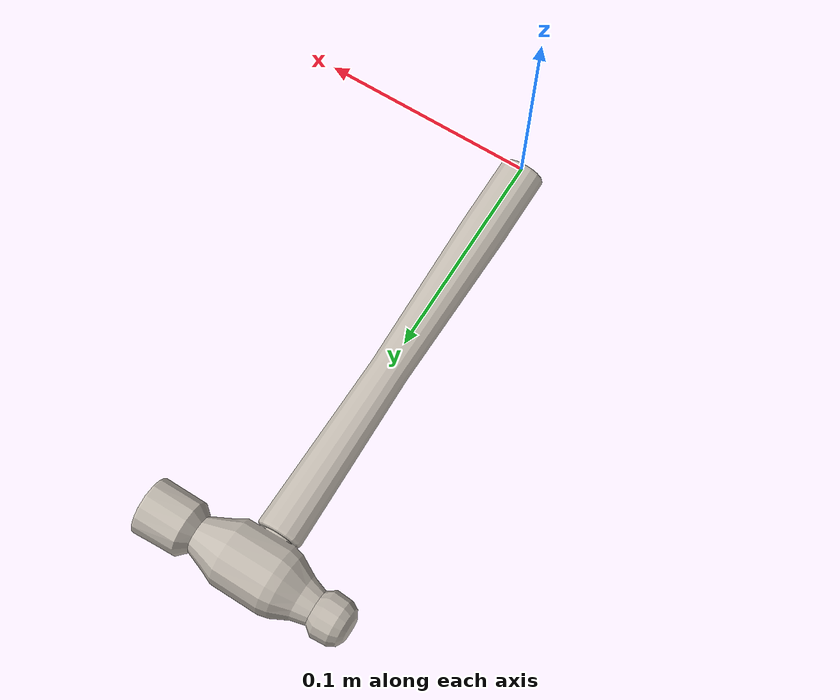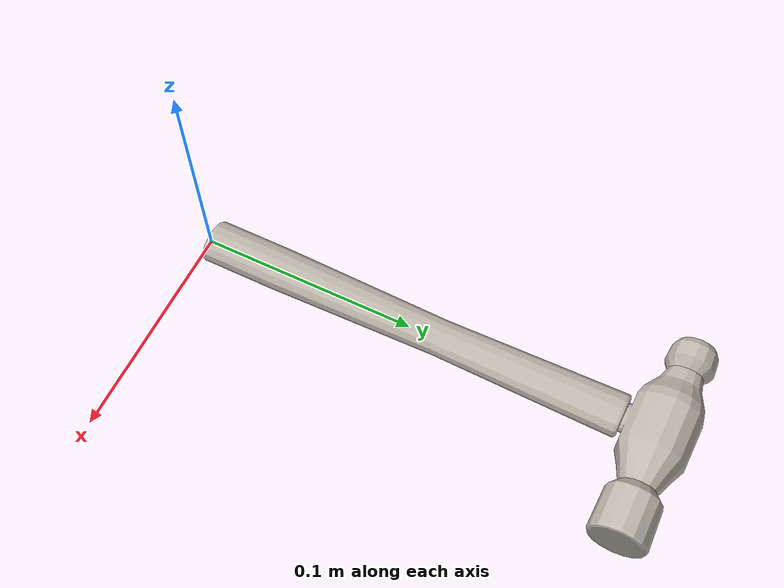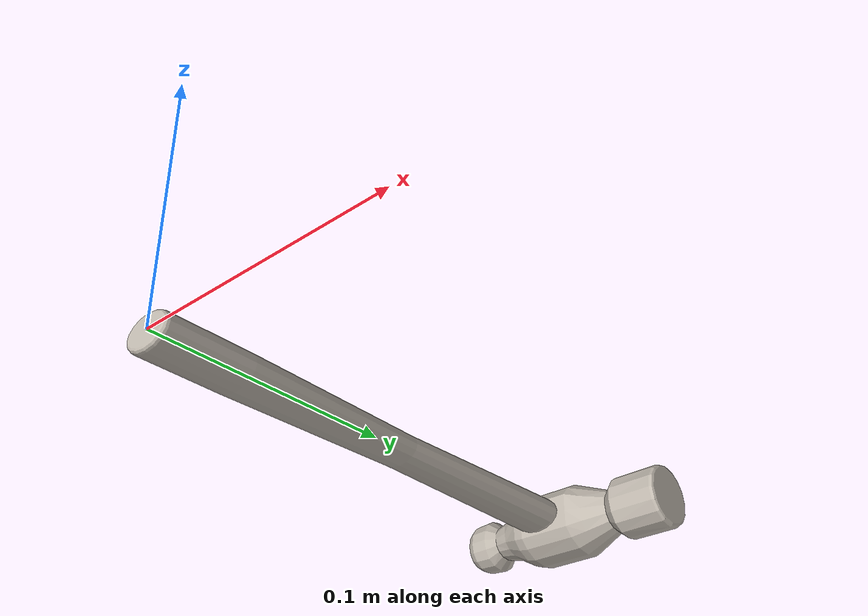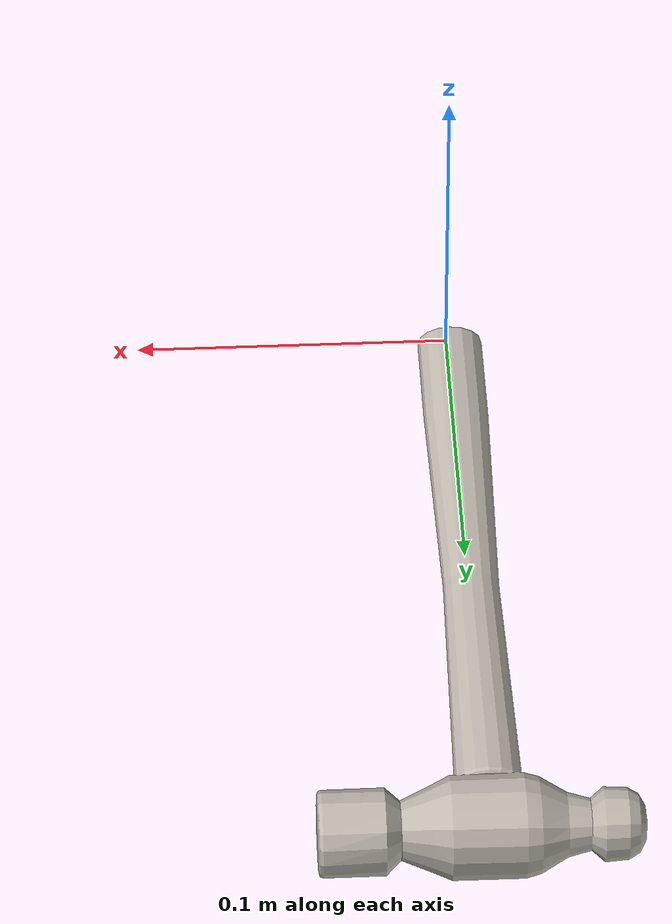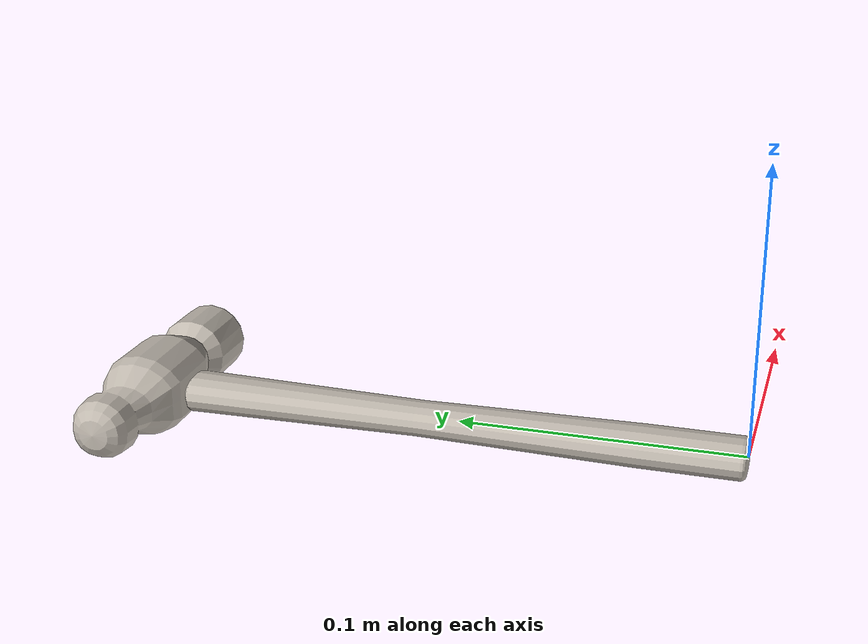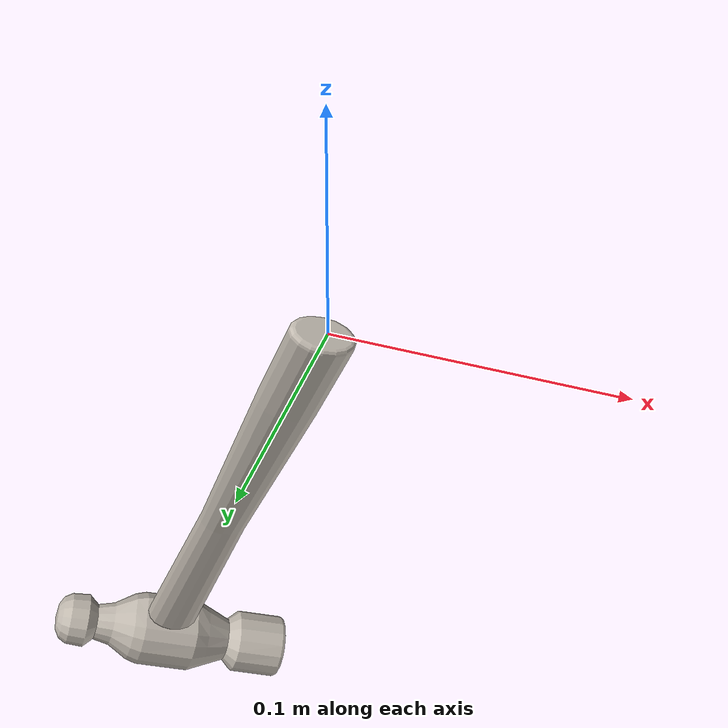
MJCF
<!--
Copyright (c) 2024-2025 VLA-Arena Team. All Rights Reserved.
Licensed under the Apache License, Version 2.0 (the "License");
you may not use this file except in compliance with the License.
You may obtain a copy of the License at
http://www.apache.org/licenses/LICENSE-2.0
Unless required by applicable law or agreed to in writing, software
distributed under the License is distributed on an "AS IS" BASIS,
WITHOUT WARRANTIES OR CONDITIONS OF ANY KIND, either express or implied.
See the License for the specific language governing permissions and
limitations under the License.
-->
<mujoco model="hammer">
  <compiler angle="radian"/>

  <asset>
    <texture type="2d" name="Image_0" file="Image_0.png"/>
    <material name="Hammers" texture="Image_0" specular="0.5" shininess="0.225"/>
    <mesh file="hammer.obj" name="hammer" scale="0.7 0.7 0.7"/>
    <mesh file="hammer_collision_0.obj" name="hammer_collision_0" scale="0.7 0.7 0.7"/>
    <mesh file="hammer_collision_1.obj" name="hammer_collision_1" scale="0.7 0.7 0.7"/>
    <mesh file="hammer_collision_2.obj" name="hammer_collision_2" scale="0.7 0.7 0.7"/>
  </asset>

  <worldbody>
    <body>
      <body name="object">
        <!-- Inertial -->

        <!-- Visual geom: group changed to 0 -->
        <geom
          mesh="hammer"
          material="Hammers"
          type="mesh"
          group="1"
          contype="0"
          conaffinity="0"
          mass="0.01" />

        <!-- Collision geoms: group changed to 1 -->
        <geom
          mesh="hammer_collision_0"
          type="mesh"
          group="0"
          solref="0.001 1"
          solimp="0.998 0.998 0.001"
          rgba="0.5272990505603383 0.7421561142137685 0.9126013996703229 0"/>
        <geom
          mesh="hammer_collision_1"
          type="mesh"
          group="0"
          solref="0.001 1"
          solimp="0.998 0.998 0.001"
          rgba="0.4694908720049348 0.7359764164112605 0.9252482522804838 0"/>
        <geom
          mesh="hammer_collision_2"
          type="mesh"
          group="0"
          solref="0.001 1"
          solimp="0.998 0.998 0.001"
          rgba="0.06574018058699616 0.9696160773323821 0.8383924965892158 0"/>
      </body>

      <!-- Grasp and reference sites -->
      <site
        name="grasppoint"
        type="sphere"
        size="0.01"
        group="4"
        rgba="1 0 0 1"
        pos="0 0.2 0"/>

      <site rgba="0 0 0 0" size="0.05" pos="0.0 0.0 -0.025" name="bottom_site" />
      <site rgba="0 0 0 0" size="0.05" pos="0.0 0.0 0.025" name="top_site" />
      <site rgba="0 0 0 0" size="0.05" pos="0.05 0.095 0" name="horizontal_radius_site" />
    </body>
  </worldbody>
</mujoco>
